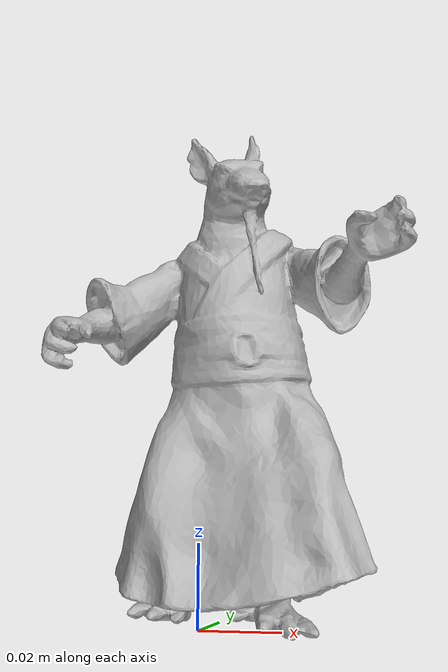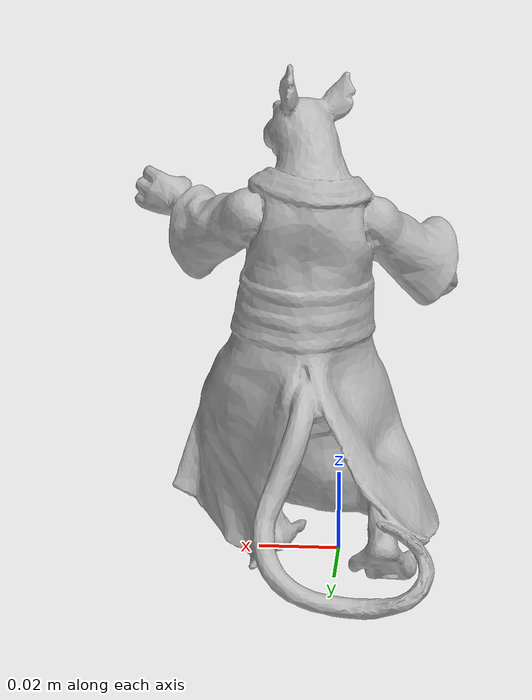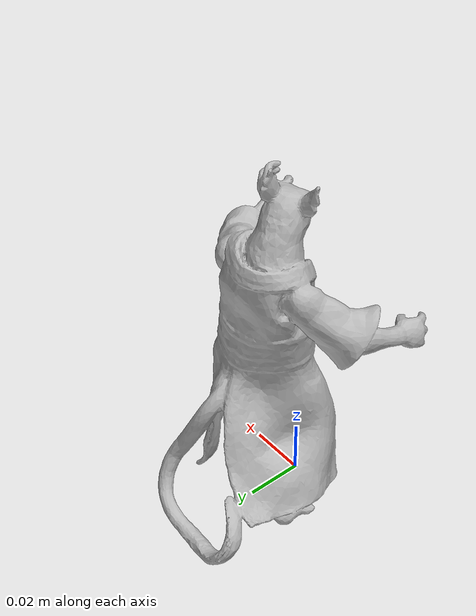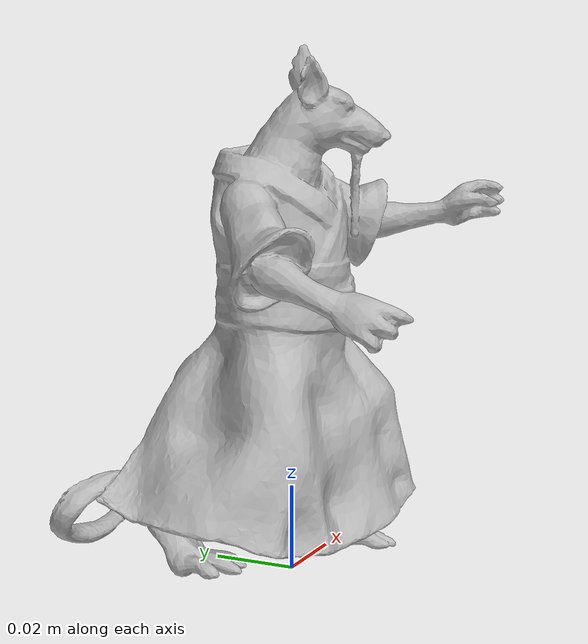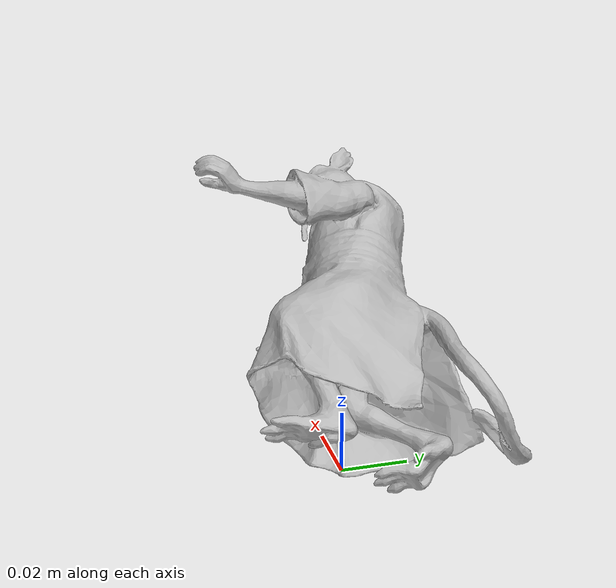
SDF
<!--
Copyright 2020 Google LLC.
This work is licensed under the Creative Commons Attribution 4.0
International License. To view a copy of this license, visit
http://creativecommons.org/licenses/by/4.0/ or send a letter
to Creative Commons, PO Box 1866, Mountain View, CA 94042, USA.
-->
<?xml version="1.0" ?>
<sdf version="1.6">
  <model name="Playmates_Industrial_CoSplinter_Teenage_Mutant_Ninja_Turtle_Action_Figure">
    <link name="link_0">
      <visual name="visual">
        <geometry>
          <mesh>
            <uri>meshes/model.obj</uri>
          </mesh>
        </geometry>
      </visual>
      <collision name="collision_0">
        <geometry>
          <mesh>
            <uri>meshes/model.obj</uri>
          </mesh>
        </geometry>
      </collision>
    </link>
  </model>
</sdf>
